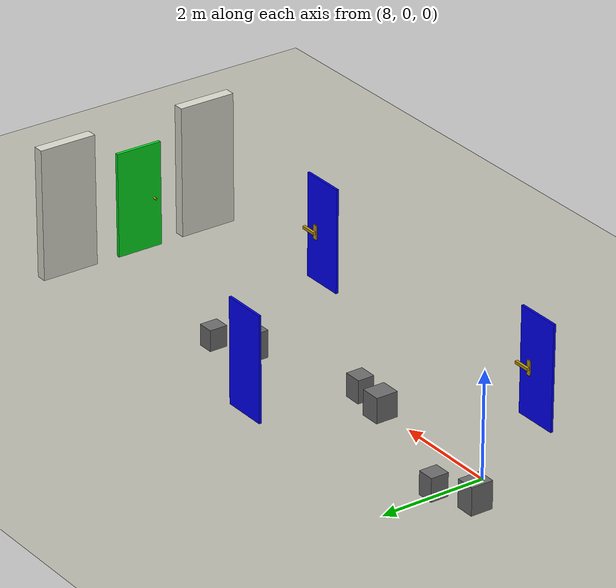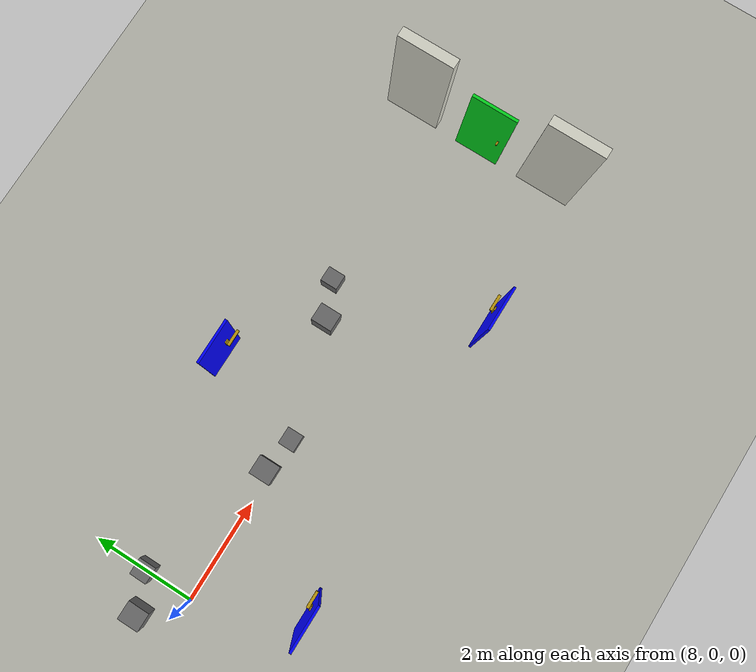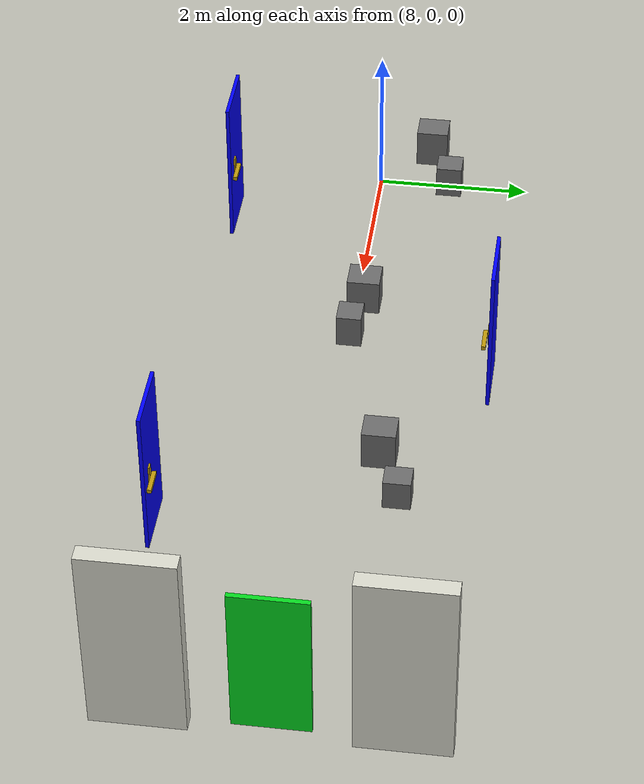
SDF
<sdf version="1.6">
 <world name="fire_corridor">
  <model name="ground_plane">
   <static>true</static>
   <link name="link">
    <collision name="col"><geometry><plane><normal>0 0 1</normal><size>30 10</size></plane></geometry></collision>
    <visual name="vis">
     <geometry><plane><normal>0 0 1</normal><size>30 10</size></plane></geometry>
     <material><ambient>0.72 0.72 0.68 1</ambient><diffuse>0.72 0.72 0.68 1</diffuse></material>
    </visual>
   </link>
  </model>
  <model name="wall_east_upper">
   <static>true</static>
   <pose>18 1.45 1.25 0 0 0</pose>
   <link name="link">
    <collision name="col"><geometry><box><size>0.2 1.1 2.5</size></box></geometry></collision>
    <visual name="vis">
     <geometry><box><size>0.2 1.1 2.5</size></box></geometry>
     <material><ambient>0.85 0.85 0.80 1</ambient><diffuse>0.85 0.85 0.80 1</diffuse></material>
    </visual>
   </link>
  </model>
  <model name="wall_east_lower">
   <static>true</static>
   <pose>18 -1.45 1.25 0 0 0</pose>
   <link name="link">
    <collision name="col"><geometry><box><size>0.2 1.1 2.5</size></box></geometry></collision>
    <visual name="vis">
     <geometry><box><size>0.2 1.1 2.5</size></box></geometry>
     <material><ambient>0.85 0.85 0.80 1</ambient><diffuse>0.85 0.85 0.80 1</diffuse></material>
    </visual>
   </link>
  </model>
  <model name="door_blue2">
   <static>false</static>
   <pose>9 -1.86 1 0 0 0</pose>
   <link name="panel">
    <inertial>
     <mass>2.0</mass>
     <inertia><ixx>0.90</ixx><ixy>0</ixy><ixz>0</ixz><iyy>0.90</iyy><iyz>0</iyz><izz>0.12</izz></inertia>
    </inertial>
    <collision name="panel_collision">
     <geometry><box><size>0.85 0.045 2</size></box></geometry>
     <surface><friction><ode><mu>0.8</mu><mu2>0.8</mu2></ode></friction></surface>
    </collision>
    <visual name="panel">
     <geometry><box><size>0.85 0.045 2</size></box></geometry>
     <material>
      <ambient>0.0 0.0 1.0 1</ambient>
      <diffuse>0.0 0.0 1.0 1</diffuse>
      <emissive>0.0 0.0 1.0 1</emissive>
     </material>
    </visual>
    <collision name="handle_collision">
     <pose>0.3 0.074 -0.05 0 0 0</pose>
     <geometry><box><size>0.32 0.07 0.055</size></box></geometry>
    </collision>
    <visual name="handle_backplate">
     <pose>0.18 0.032 -0.05 0 0 0</pose>
     <geometry><box><size>0.08 0.022 0.28</size></box></geometry>
     <material><ambient>0.75 0.60 0.05 1</ambient><diffuse>0.75 0.60 0.05 1</diffuse></material>
    </visual>
    <visual name="handle">
     <pose>0.3 0.078 -0.05 0 0 0</pose>
     <geometry><box><size>0.32 0.052 0.052</size></box></geometry>
     <material><ambient>0.75 0.60 0.05 1</ambient><diffuse>0.75 0.60 0.05 1</diffuse></material>
    </visual>
   </link>
   <joint name="hinge" type="revolute">
    <pose>-0.425 0 0 0 0 0</pose>
    <parent>world</parent>
    <child>panel</child>
    <axis>
     <xyz>0 0 1</xyz>
     <limit><lower>-2.10</lower><upper>2.10</upper><effort>40</effort><velocity>1.5</velocity></limit>
     <dynamics><damping>1.0</damping><friction>0.05</friction></dynamics>
    </axis>
   </joint>
   <plugin filename="ignition-gazebo-joint-position-controller-system" name="gz::sim::systems::JointPositionController">
    <joint_name>hinge</joint_name>
    <topic>/fire_robot/door/blue/x900/yn186/sp/cmd</topic>
    <p_gain>8.0</p_gain>
    <d_gain>0.4</d_gain>
    <cmd_max>60</cmd_max>
    <cmd_min>-60</cmd_min>
   </plugin>
  </model>
  <model name="door_blue3">
   <static>false</static>
   <pose>12 1.86 1 0 0 0</pose>
   <link name="panel">
    <inertial>
     <mass>2.0</mass>
     <inertia><ixx>0.90</ixx><ixy>0</ixy><ixz>0</ixz><iyy>0.90</iyy><iyz>0</iyz><izz>0.12</izz></inertia>
    </inertial>
    <collision name="panel_collision">
     <geometry><box><size>0.85 0.045 2</size></box></geometry>
     <surface><friction><ode><mu>0.8</mu><mu2>0.8</mu2></ode></friction></surface>
    </collision>
    <visual name="panel">
     <geometry><box><size>0.85 0.045 2</size></box></geometry>
     <material>
      <ambient>0.0 0.0 1.0 1</ambient>
      <diffuse>0.0 0.0 1.0 1</diffuse>
      <emissive>0.0 0.0 1.0 1</emissive>
     </material>
    </visual>
    <collision name="handle_collision">
     <pose>0.3 -0.074 -0.05 0 0 0</pose>
     <geometry><box><size>0.32 0.07 0.055</size></box></geometry>
    </collision>
    <visual name="handle_backplate">
     <pose>0.18 -0.032 -0.05 0 0 0</pose>
     <geometry><box><size>0.08 0.022 0.28</size></box></geometry>
     <material><ambient>0.75 0.60 0.05 1</ambient><diffuse>0.75 0.60 0.05 1</diffuse></material>
    </visual>
    <visual name="handle">
     <pose>0.3 -0.078 -0.05 0 0 0</pose>
     <geometry><box><size>0.32 0.052 0.052</size></box></geometry>
     <material><ambient>0.75 0.60 0.05 1</ambient><diffuse>0.75 0.60 0.05 1</diffuse></material>
    </visual>
   </link>
   <joint name="hinge" type="revolute">
    <pose>-0.425 0 0 0 0 0</pose>
    <parent>world</parent>
    <child>panel</child>
    <axis>
     <xyz>0 0 1</xyz>
     <limit><lower>-2.10</lower><upper>2.10</upper><effort>40</effort><velocity>1.5</velocity></limit>
     <dynamics><damping>1.0</damping><friction>0.05</friction></dynamics>
    </axis>
   </joint>
   <plugin filename="ignition-gazebo-joint-position-controller-system" name="gz::sim::systems::JointPositionController">
    <joint_name>hinge</joint_name>
    <topic>/fire_robot/door/blue/x1200/yp186/sn/cmd</topic>
    <p_gain>8.0</p_gain>
    <d_gain>0.4</d_gain>
    <cmd_max>60</cmd_max>
    <cmd_min>-60</cmd_min>
   </plugin>
  </model>
  <model name="door_blue6">
   <static>false</static>
   <pose>15 -1.86 1 0 0 0</pose>
   <link name="panel">
    <inertial>
     <mass>2.0</mass>
     <inertia><ixx>0.90</ixx><ixy>0</ixy><ixz>0</ixz><iyy>0.90</iyy><iyz>0</iyz><izz>0.12</izz></inertia>
    </inertial>
    <collision name="panel_collision">
     <geometry><box><size>0.85 0.045 2</size></box></geometry>
     <surface><friction><ode><mu>0.8</mu><mu2>0.8</mu2></ode></friction></surface>
    </collision>
    <visual name="panel">
     <geometry><box><size>0.85 0.045 2</size></box></geometry>
     <material>
      <ambient>0.0 0.0 1.0 1</ambient>
      <diffuse>0.0 0.0 1.0 1</diffuse>
      <emissive>0.0 0.0 1.0 1</emissive>
     </material>
    </visual>
    <collision name="handle_collision">
     <pose>0.3 0.074 -0.05 0 0 0</pose>
     <geometry><box><size>0.32 0.07 0.055</size></box></geometry>
    </collision>
    <visual name="handle_backplate">
     <pose>0.18 0.032 -0.05 0 0 0</pose>
     <geometry><box><size>0.08 0.022 0.28</size></box></geometry>
     <material><ambient>0.75 0.60 0.05 1</ambient><diffuse>0.75 0.60 0.05 1</diffuse></material>
    </visual>
    <visual name="handle">
     <pose>0.3 0.078 -0.05 0 0 0</pose>
     <geometry><box><size>0.32 0.052 0.052</size></box></geometry>
     <material><ambient>0.75 0.60 0.05 1</ambient><diffuse>0.75 0.60 0.05 1</diffuse></material>
    </visual>
   </link>
   <joint name="hinge" type="revolute">
    <pose>-0.425 0 0 0 0 0</pose>
    <parent>world</parent>
    <child>panel</child>
    <axis>
     <xyz>0 0 1</xyz>
     <limit><lower>-2.10</lower><upper>2.10</upper><effort>40</effort><velocity>1.5</velocity></limit>
     <dynamics><damping>1.0</damping><friction>0.05</friction></dynamics>
    </axis>
   </joint>
   <plugin filename="ignition-gazebo-joint-position-controller-system" name="gz::sim::systems::JointPositionController">
    <joint_name>hinge</joint_name>
    <topic>/fire_robot/door/blue/x1500/yn186/sp/cmd</topic>
    <p_gain>8.0</p_gain>
    <d_gain>0.4</d_gain>
    <cmd_max>60</cmd_max>
    <cmd_min>-60</cmd_min>
   </plugin>
  </model>
  <model name="exit_green">
   <static>true</static>
   <pose>17.92 0 1.0 0 0 0</pose>
   <link name="link">
    <visual name="panel">
     <geometry><box><size>0.06 0.9 2.0</size></box></geometry>
     <material><ambient>0.02 0.85 0.12 1</ambient><diffuse>0.02 0.85 0.12 1</diffuse></material>
    </visual>
   </link>
  </model>
  <model name="handle_exit">
   <static>true</static>
   <pose>17.88 -0.30 0.95 0 1.5708 0</pose>
   <link name="link">
    <visual name="handle">
     <geometry><cylinder><radius>0.018</radius><length>0.13</length></cylinder></geometry>
     <material><ambient>0.75 0.60 0.05 1</ambient><diffuse>0.75 0.60 0.05 1</diffuse></material>
    </visual>
   </link>
  </model>
  <model name="v5_center_block_03_pre_blue2">
   <static>true</static>
   <pose>7.35 0.65 0.26 0 0 0</pose>
   <link name="link">
    <collision name="col"><geometry><box><size>0.36 0.42 0.52</size></box></geometry></collision>
    <visual name="vis">
     <geometry><box><size>0.36 0.42 0.52</size></box></geometry>
     <material><ambient>0.42 0.42 0.42 1</ambient><diffuse>0.42 0.42 0.42 1</diffuse></material>
    </visual>
   </link>
  </model>
  <model name="v5_center_block_04_between_blue2_blue3">
   <static>true</static>
   <pose>10.65 0.10 0.24 0 0 0</pose>
   <link name="link">
    <collision name="col"><geometry><box><size>0.38 0.42 0.48</size></box></geometry></collision>
    <visual name="vis">
     <geometry><box><size>0.38 0.42 0.48</size></box></geometry>
     <material><ambient>0.42 0.42 0.42 1</ambient><diffuse>0.42 0.42 0.42 1</diffuse></material>
    </visual>
   </link>
  </model>
  <model name="v5_center_block_05_after_blue3">
   <static>true</static>
   <pose>13.55 0.65 0.26 0 0 0</pose>
   <link name="link">
    <collision name="col"><geometry><box><size>0.36 0.42 0.52</size></box></geometry></collision>
    <visual name="vis">
     <geometry><box><size>0.36 0.42 0.52</size></box></geometry>
     <material><ambient>0.42 0.42 0.42 1</ambient><diffuse>0.42 0.42 0.42 1</diffuse></material>
    </visual>
   </link>
  </model>
  <model name="v5_side_clutter_04_left">
   <static>true</static>
   <pose>8.05 0.95 0.22 0 0 0</pose>
   <link name="link">
    <collision name="col"><geometry><box><size>0.32 0.34 0.44</size></box></geometry></collision>
    <visual name="vis">
     <geometry><box><size>0.32 0.34 0.44</size></box></geometry>
     <material><ambient>0.42 0.42 0.42 1</ambient><diffuse>0.42 0.42 0.42 1</diffuse></material>
    </visual>
   </link>
  </model>
  <model name="v5_side_clutter_05_right">
   <static>true</static>
   <pose>11.35 0.00 0.22 0 0 0</pose>
   <link name="link">
    <collision name="col"><geometry><box><size>0.34 0.32 0.44</size></box></geometry></collision>
    <visual name="vis">
     <geometry><box><size>0.34 0.32 0.44</size></box></geometry>
     <material><ambient>0.42 0.42 0.42 1</ambient><diffuse>0.42 0.42 0.42 1</diffuse></material>
    </visual>
   </link>
  </model>
  <model name="v5_side_clutter_06_left">
   <static>true</static>
   <pose>14.25 0.95 0.20 0 0 0</pose>
   <link name="link">
    <collision name="col"><geometry><box><size>0.30 0.34 0.40</size></box></geometry></collision>
    <visual name="vis">
     <geometry><box><size>0.30 0.34 0.40</size></box></geometry>
     <material><ambient>0.42 0.42 0.42 1</ambient><diffuse>0.42 0.42 0.42 1</diffuse></material>
    </visual>
   </link>
  </model>
 </world>
</sdf>
